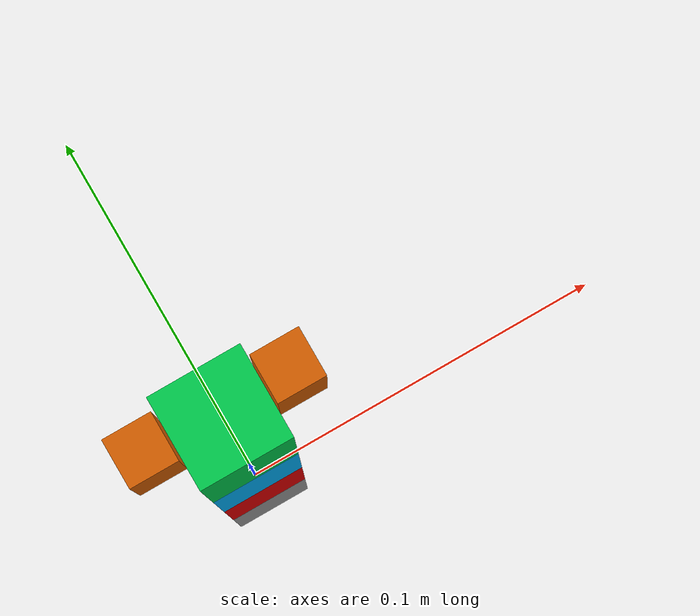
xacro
<?xml version="1.0"?>
<robot xmlns:xacro="http://www.ros.org/wiki/xacro" name="vertical_3dof_robot">

  <!-- Constants -->
  <xacro:property name="link_radius" value="0.01"/>
  <xacro:property name="link_length" value="0.1"/>

  <xacro:property name="m1" value="1.0"/>
  <xacro:property name="m2" value="0.8"/>
  <xacro:property name="m3" value="0.6"/>
  <xacro:property name="m4" value="0.5"/>

  <!-- Inertia Macro for Z-Extended Boxes -->
  <xacro:macro name="inertial_box_z" params="mass x y z">
    <inertial>
      <origin xyz="0 0 ${z/2}" rpy="0 0 0"/>
      <mass value="${mass}"/>
      <inertia
        ixx="${(1/12.0)*mass*(y*y + z*z)}"
        iyy="${(1/12.0)*mass*(x*x + z*z)}"
        izz="${(1/12.0)*mass*(x*x + y*y)}"
        ixy="0" ixz="0" iyz="0"/>
    </inertial>
  </xacro:macro>

  <!-- Link Macro (Z-Axis Extension) -->
  <xacro:macro name="z_link" params="name mass color">
    <link name="${name}">
      <xacro:inertial_box_z mass="${mass}" x="${link_radius*2}" y="${link_radius*2}" z="${link_length}"/>
      <visual>
        <origin xyz="0 0 ${link_length/2}" rpy="0 0 0"/>
        <geometry>
          <box size="${link_radius*2} ${link_radius*2} ${link_length}"/>
        </geometry>
        <material><color rgba="${color}"/></material>
      </visual>
      <collision>
        <origin xyz="0 0 ${link_length/2}" rpy="0 0 0"/>
        <geometry>
          <box size="${link_radius*2} ${link_radius*2} ${link_length}"/>
        </geometry>
      </collision>
    </link>
  </xacro:macro>

  <!-- World -->
  <link name="world"/>
  <xacro:z_link name="link_1" mass="${m1}" color="0.6 0.6 0.6 1.0"/>
  <joint name="world_to_link_1" type="fixed">
    <parent link="world"/>
    <child link="link_1"/>
    <origin xyz="0 0 0" rpy="0 0 0"/>
  </joint>

  <!-- Link 2 -->
  <xacro:z_link name="link_2" mass="${m2}" color="0.9 0.0 0.0 1.0"/>
  <joint name="link_1_to_link_2" type="revolute">
    <parent link="link_1"/>
    <child link="link_2"/>
    <origin xyz="0 0 ${link_length}" rpy="0 0 0"/>
    <axis xyz="0 1 0"/>
    <limit lower="-1.57" upper="1.57" effort="50" velocity="1.0"/>
  </joint>

  <!-- Link 3 -->
  <xacro:z_link name="link_3" mass="${m3}" color="0.0 0.7 1.0 1.0"/>
  <joint name="link_2_to_link_3" type="revolute">
    <parent link="link_2"/>
    <child link="link_3"/>
    <origin xyz="0 0 ${link_length}" rpy="0 0 0"/>
    <axis xyz="0 1 0"/>
    <limit lower="-1.57" upper="1.57" effort="50" velocity="1.0"/>
  </joint>

  <!-- Link 4 -->
  <xacro:z_link name="link_4" mass="${m4}" color="0.0 0.8 0.3 1.0"/>
  <joint name="link_3_to_link_4" type="revolute">
    <parent link="link_3"/>
    <child link="link_4"/>
    <origin xyz="0 0 ${link_length}" rpy="0 0 0"/>
    <axis xyz="0 1 0"/>
    <limit lower="-1.57" upper="1.57" effort="50" velocity="1.0"/>
  </joint>

  <!-- Gripper -->
  <link name="gripper_base">
    <inertial>
      <origin xyz="0 0 0" rpy="0 0 0"/>
      <mass value="0.05"/>
      <inertia ixx="1e-5" iyy="1e-5" izz="1e-5" ixy="0" ixz="0" iyz="0"/>
    </inertial>

    <!-- Left Finger -->
    <visual>
      <origin xyz="0.015 0 ${0.02}" rpy="0 0 0"/>
      <geometry><box size="0.01 0.01 0.05"/></geometry>
    </visual>

    <!-- Right Finger -->
    <visual>
      <origin xyz="-0.015 0 ${0.02}" rpy="0 0 0"/>
      <geometry><box size="0.01 0.01 0.05"/></geometry>
    </visual>
  </link>

  <joint name="link_4_to_gripper" type="fixed">
    <parent link="link_4"/>
    <child link="gripper_base"/>
    <origin xyz="0 0 ${link_length}" rpy="0 0 0"/>
  </joint>

</robot>
